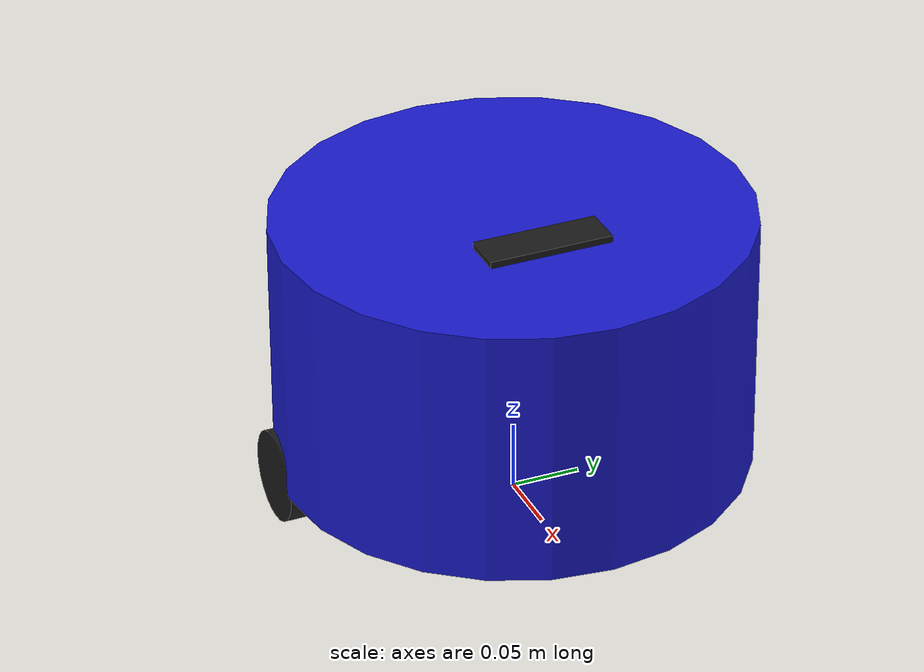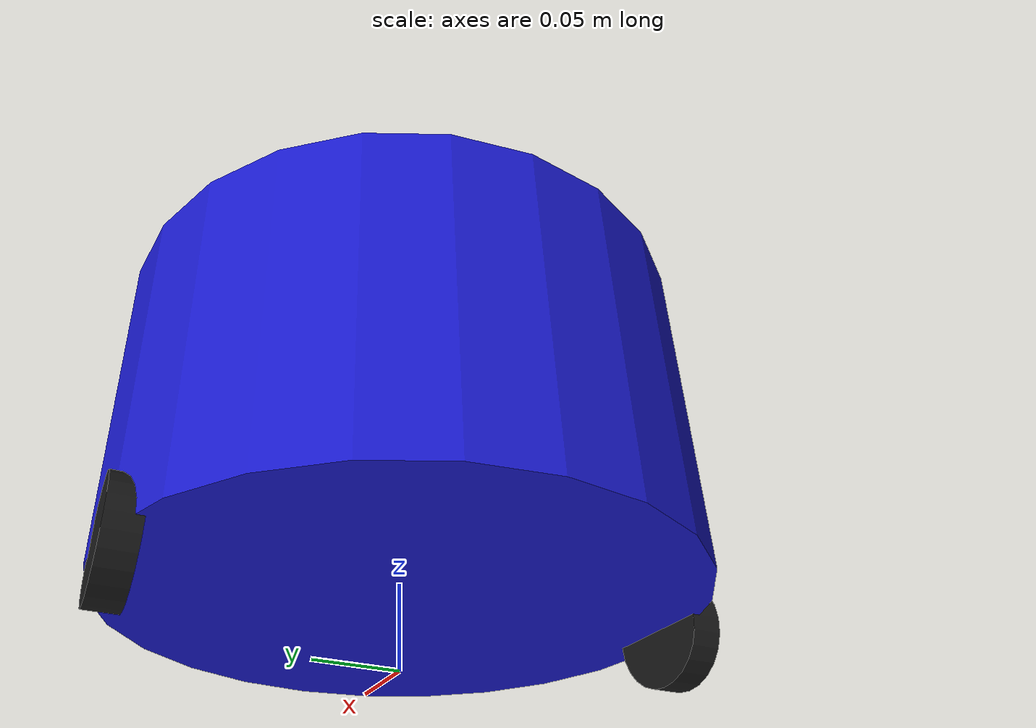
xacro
<?xml version="1.0"?>
<robot xmlns:xacro="http://www.ros.org/wiki/xacro" name="marcus_bot">

  <link name="base_footprint"/>

  <joint name="base_joint" type="fixed">
    <parent link="base_footprint"/>
    <child link="base_link"/>
    <origin xyz="0 0 0.033" rpy="0 0 0"/>
  </joint>

  <link name="base_link">
    <visual>
      <origin xyz="0 0 0.095" rpy="0 0 0"/>
      <geometry>
        <cylinder radius="0.17" length="0.19"/>
      </geometry>
      <material name="blue">
        <color rgba="0.1 0.1 0.8 1"/>
      </material>
    </visual>
    <collision>
      <origin xyz="0 0 0.095" rpy="0 0 0"/>
      <geometry>
        <cylinder radius="0.17" length="0.19"/>
      </geometry>
    </collision>
    <inertial>
      <origin xyz="0 0 0.095" rpy="0 0 0"/>
      <mass value="8.0"/>
      <!-- Ixx = m(3r^2 + h^2)/12, Izz = mr^2/2 -->
      <inertia ixx="0.08186" ixy="0.0" ixz="0.0" iyy="0.08186" iyz="0.0" izz="0.1156"/>
    </inertial>
  </link>

  <joint name="camera_joint" type="fixed">
    <parent link="base_link"/>
    <child link="camera_link"/>
    <origin xyz="0.05 0 0.18" rpy="0 0 0"/>
  </joint>

  <link name="camera_link">
    <visual>
      <origin xyz="0 0 0" rpy="0 0 0"/>
      <geometry>
        <box size="0.03 0.09 0.03"/>
      </geometry>
      <material name="black">
        <color rgba="0.1 0.1 0.1 1"/>
      </material>
    </visual>
    <collision>
      <geometry>
        <box size="0.03 0.09 0.03"/>
      </geometry>
    </collision>
    <inertial>
      <mass value="0.06"/>
      <inertia ixx="0.000045" ixy="0.0" ixz="0.0" iyy="0.000009" iyz="0.0" izz="0.000045"/>
    </inertial>
  </link>

  <!-- CRITICO: Z-forward (Gazebo camera) in X-forward (ROS optical frame) -->
  <joint name="camera_depth_joint" type="fixed">
    <parent link="camera_link"/>
    <child link="camera_depth_optical_frame"/>
    <origin xyz="0 0 0" rpy="-1.5707963 0 -1.5707963"/>
  </joint>

  <link name="camera_depth_optical_frame"/>

  <joint name="left_wheel_joint" type="continuous">
    <parent link="base_link"/>
    <child link="left_wheel"/>
    <origin xyz="-0.032 0.16 0" rpy="-1.5707963 0 0"/>
    <axis xyz="0 0 1"/>
  </joint>

  <link name="left_wheel">
    <visual>
      <geometry>
        <cylinder radius="0.033" length="0.018"/>
      </geometry>
      <material name="black"/>
    </visual>
    <collision>
      <geometry>
        <cylinder radius="0.033" length="0.018"/>
      </geometry>
    </collision>
    <inertial>
      <mass value="0.5"/>
      <inertia ixx="0.000149" ixy="0.0" ixz="0.0" iyy="0.000149" iyz="0.0" izz="0.000272"/>
    </inertial>
  </link>

  <joint name="right_wheel_joint" type="continuous">
    <parent link="base_link"/>
    <child link="right_wheel"/>
    <origin xyz="-0.032 -0.16 0" rpy="-1.5707963 0 0"/>
    <axis xyz="0 0 1"/>
  </joint>

  <link name="right_wheel">
    <visual>
      <geometry>
        <cylinder radius="0.033" length="0.018"/>
      </geometry>
      <material name="black"/>
    </visual>
    <collision>
      <geometry>
        <cylinder radius="0.033" length="0.018"/>
      </geometry>
    </collision>
    <inertial>
      <mass value="0.5"/>
      <inertia ixx="0.000149" ixy="0.0" ixz="0.0" iyy="0.000149" iyz="0.0" izz="0.000272"/>
    </inertial>
  </link>

  <gazebo>
    <plugin filename="gz-sim-diff-drive-system"
            name="gz::sim::systems::DiffDrive">
      <left_joint>left_wheel_joint</left_joint>
      <right_joint>right_wheel_joint</right_joint>
      <wheel_separation>0.32</wheel_separation>
      <wheel_radius>0.033</wheel_radius>
      <max_linear_acceleration>1.0</max_linear_acceleration>
      <min_linear_acceleration>-1.0</min_linear_acceleration>
      <max_angular_acceleration>2.0</max_angular_acceleration>
      <odom_publish_frequency>10.0</odom_publish_frequency>
      <frame_id>odom</frame_id>
      <child_frame_id>base_footprint</child_frame_id>
      <topic>/model/marcus_bot/cmd_vel</topic>
      <odom_topic>/model/marcus_bot/odometry</odom_topic>
      <tf_topic>/model/marcus_bot/tf</tf_topic>
    </plugin>
    <plugin filename="gz-sim-joint-state-publisher-system"
            name="gz::sim::systems::JointStatePublisher">
      <joint_name>left_wheel_joint</joint_name>
      <joint_name>right_wheel_joint</joint_name>
    </plugin>
  </gazebo>

  <gazebo reference="camera_link">
    <sensor name="oak_d_sensor" type="rgbd_camera">
      <always_on>1</always_on>
      <update_rate>15</update_rate>
      <camera>
        <horizontal_fov>1.39626</horizontal_fov>
        <image>
          <width>640</width>
          <height>480</height>
          <format>RGB_INT8</format>
        </image>
        <clip>
          <near>0.1</near>
          <far>10.0</far>
        </clip>
        <noise>
          <type>gaussian</type>
          <mean>0.0</mean>
          <stddev>0.007</stddev>
        </noise>
      </camera>
      <topic>/oak/stereo</topic>
      <gz_frame_id>camera_depth_optical_frame</gz_frame_id>
    </sensor>
  </gazebo>

</robot>
